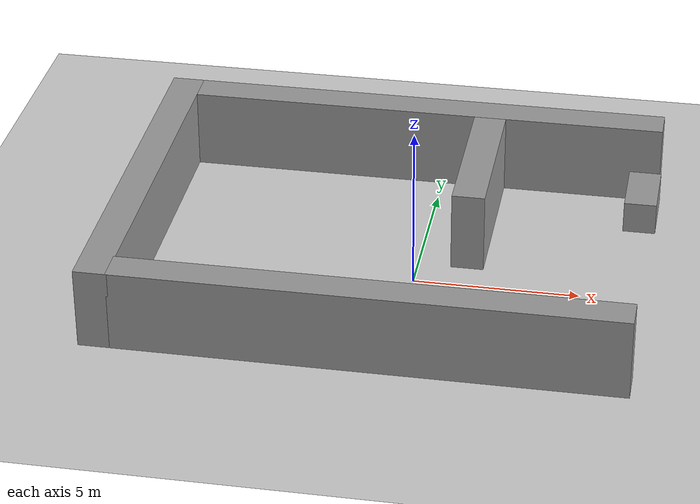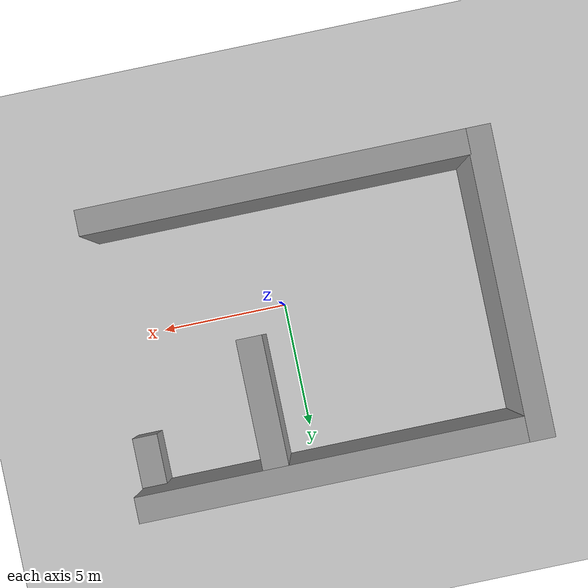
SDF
<sdf version="1.6">
 <world name="default">
  <light name="sun" type="directional">
   <pose>0 0 10 0 -0 0</pose>
   <diffuse>0.8 0.8 0.8 1</diffuse>
   <specular>0.2 0.2 0.2 1</specular>
   <attenuation>
    <range>1000</range>
    <constant>0.9</constant>
    <linear>0.01</linear>
    <quadratic>0.001</quadratic>
   </attenuation>
   <direction>-0.5 0.1 -0.9</direction>
  </light>
  <model name="ground_plane">
   <static>1</static>
   <link name="link">
    <collision name="collision">
     <geometry><plane><normal>0 0 1</normal><size>100 100</size></plane></geometry>
     <surface>
      <contact><collide_bitmask>65535</collide_bitmask></contact>
      <friction><ode><mu>100</mu><mu2>50</mu2></ode></friction>
     </surface>
    </collision>
    <visual name="visual">
     <cast_shadows>0</cast_shadows>
     <geometry><plane><normal>0 0 1</normal><size>100 100</size></plane></geometry>
     <material>
      <script><uri>file://media/materials/scripts/gazebo.material</uri><name>Gazebo/Grey</name></script>
     </material>
    </visual>
   </link>
  </model>
  <gravity>0 0 -9.8</gravity>
  <magnetic_field>6e-06 2.3e-05 -4.2e-05</magnetic_field>
  <atmosphere type="adiabatic"/>
  <physics name="default_physics" default="0" type="ode">
   <max_step_size>0.001</max_step_size>
   <real_time_factor>1</real_time_factor>
   <real_time_update_rate>1000</real_time_update_rate>
  </physics>
  <scene><ambient>0.4 0.4 0.4 1</ambient><background>0.7 0.7 0.7 1</background><shadows>1</shadows></scene>
  <spherical_coordinates>
   <surface_model>EARTH_WGS84</surface_model>
   <latitude_deg>0</latitude_deg>
   <longitude_deg>0</longitude_deg>
   <elevation>0</elevation>
   <heading_deg>0</heading_deg>
  </spherical_coordinates>
  <model name="deadspace">
   <link name="link">
    <inertial>
     <mass>11.6598</mass>
     <inertia><ixx>1.9433</ixx><ixy>0</ixy><ixz>0</ixz><iyy>133.069</iyy><iyz>0</iyz><izz>133.069</izz></inertia>
    </inertial>
    <pose>1.5 1 0.6 0 -0 0</pose>
    <visual name="visual">
     <geometry><box><size>15 1 2.5</size></box></geometry>
     <material>
      <script><name>Gazebo/Grey</name><uri>file://media/materials/scripts/gazebo.material</uri></script>
      <shader type="pixel"><normal_map>__default__</normal_map></shader>
      <ambient>0.3 0.3 0.3 1</ambient>
      <diffuse>0.7 0.7 0.7 1</diffuse>
      <specular>0.01 0.01 0.01 1</specular>
      <emissive>0 0 0 1</emissive>
     </material>
    </visual>
    <collision name="collision">
     <geometry><box><size>15 1 2.5</size></box></geometry>
     <surface>
      <friction>
       <ode><mu>1</mu><mu2>1</mu2><fdir1>0 0 0</fdir1><slip1>0</slip1><slip2>0</slip2></ode>
       <torsional>
        <coefficient>1</coefficient>
        <patch_radius>0</patch_radius>
        <surface_radius>0</surface_radius>
        <use_patch_radius>1</use_patch_radius>
        <ode><slip>0</slip></ode>
       </torsional>
      </friction>
      <bounce><restitution_coefficient>0</restitution_coefficient><threshold>1e+06</threshold></bounce>
      <contact>
       <collide_without_contact>0</collide_without_contact>
       <collide_without_contact_bitmask>1</collide_without_contact_bitmask>
       <collide_bitmask>1</collide_bitmask>
       <ode>
        <soft_cfm>0</soft_cfm>
        <soft_erp>0.2</soft_erp>
        <kp>1e+13</kp>
        <kd>1</kd>
        <max_vel>0.01</max_vel>
        <min_depth>0</min_depth>
       </ode>
       <bullet>
        <split_impulse>1</split_impulse>
        <split_impulse_penetration_threshold>-0.01</split_impulse_penetration_threshold>
        <soft_cfm>0</soft_cfm>
        <soft_erp>0.2</soft_erp>
        <kp>1e+13</kp>
        <kd>1</kd>
       </bullet>
      </contact>
     </surface>
    </collision>
   </link>
   <link name="link_0">
    <inertial>
     <mass>1</mass>
     <inertia>
      <ixx>0.166667</ixx>
      <ixy>0</ixy>
      <ixz>0</ixz>
      <iyy>0.166667</iyy>
      <iyz>0</iyz>
      <izz>0.166667</izz>
     </inertia>
    </inertial>
    <pose>8.54573 10.4934 -0.15846 -3e-06 -0 -1e-05</pose>
    <visual name="visual">
     <geometry><box><size>1 2 1</size></box></geometry>
     <material>
      <lighting>1</lighting>
      <script><uri>file://media/materials/scripts/gazebo.material</uri><name>Gazebo/Grey</name></script>
      <shader type="pixel"><normal_map>__default__</normal_map></shader>
      <ambient>0.3 0.3 0.3 1</ambient>
      <diffuse>0.7 0.7 0.7 1</diffuse>
      <specular>0.01 0.01 0.01 1</specular>
      <emissive>0 0 0 1</emissive>
     </material>
    </visual>
    <collision name="collision">
     <geometry><box><size>1 2 1</size></box></geometry>
     <surface>
      <friction>
       <ode><mu>1</mu><mu2>1</mu2><fdir1>0 0 0</fdir1><slip1>0</slip1><slip2>0</slip2></ode>
       <torsional>
        <coefficient>1</coefficient>
        <patch_radius>0</patch_radius>
        <surface_radius>0</surface_radius>
        <use_patch_radius>1</use_patch_radius>
        <ode><slip>0</slip></ode>
       </torsional>
      </friction>
      <bounce><restitution_coefficient>0</restitution_coefficient><threshold>1e+06</threshold></bounce>
      <contact>
       <collide_without_contact>0</collide_without_contact>
       <collide_without_contact_bitmask>1</collide_without_contact_bitmask>
       <collide_bitmask>1</collide_bitmask>
       <ode>
        <soft_cfm>0</soft_cfm>
        <soft_erp>0.2</soft_erp>
        <kp>1e+13</kp>
        <kd>1</kd>
        <max_vel>0.01</max_vel>
        <min_depth>0</min_depth>
       </ode>
       <bullet>
        <split_impulse>1</split_impulse>
        <split_impulse_penetration_threshold>-0.01</split_impulse_penetration_threshold>
        <soft_cfm>0</soft_cfm>
        <soft_erp>0.2</soft_erp>
        <kp>1e+13</kp>
        <kd>1</kd>
       </bullet>
      </contact>
     </surface>
    </collision>
   </link>
   <link name="link_1">
    <inertial>
     <mass>4.8902</mass>
     <inertia><ixx>10.1529</ixx><ixy>0</ixy><ixz>0</ixz><iyy>0.815033</iyy><iyz>0</iyz><izz>10.1529</izz></inertia>
    </inertial>
    <pose>3.56457 9 0.6 1e-05 -0 0</pose>
    <visual name="visual">
     <geometry><box><size>1 5 2.5</size></box></geometry>
     <material>
      <lighting>1</lighting>
      <script><uri>file://media/materials/scripts/gazebo.material</uri><name>Gazebo/Grey</name></script>
      <shader type="pixel"><normal_map>__default__</normal_map></shader>
      <ambient>0.3 0.3 0.3 1</ambient>
      <diffuse>0.7 0.7 0.7 1</diffuse>
      <specular>0.01 0.01 0.01 1</specular>
      <emissive>0 0 0 1</emissive>
     </material>
    </visual>
    <collision name="collision">
     <geometry><box><size>1 5 2.5</size></box></geometry>
     <surface>
      <friction>
       <ode><mu>1</mu><mu2>1</mu2><fdir1>0 0 0</fdir1><slip1>0</slip1><slip2>0</slip2></ode>
       <torsional>
        <coefficient>1</coefficient>
        <patch_radius>0</patch_radius>
        <surface_radius>0</surface_radius>
        <use_patch_radius>1</use_patch_radius>
        <ode><slip>0</slip></ode>
       </torsional>
      </friction>
      <bounce><restitution_coefficient>0</restitution_coefficient><threshold>1e+06</threshold></bounce>
      <contact>
       <collide_without_contact>0</collide_without_contact>
       <collide_without_contact_bitmask>1</collide_without_contact_bitmask>
       <collide_bitmask>1</collide_bitmask>
       <ode>
        <soft_cfm>0</soft_cfm>
        <soft_erp>0.2</soft_erp>
        <kp>1e+13</kp>
        <kd>1</kd>
        <max_vel>0.01</max_vel>
        <min_depth>0</min_depth>
       </ode>
       <bullet>
        <split_impulse>1</split_impulse>
        <split_impulse_penetration_threshold>-0.01</split_impulse_penetration_threshold>
        <soft_cfm>0</soft_cfm>
        <soft_erp>0.2</soft_erp>
        <kp>1e+13</kp>
        <kd>1</kd>
       </bullet>
      </contact>
     </surface>
    </collision>
   </link>
   <link name="link_1_clone">
    <inertial>
     <mass>4.8902</mass>
     <inertia><ixx>10.1529</ixx><ixy>0</ixy><ixz>0</ixz><iyy>0.815033</iyy><iyz>0</iyz><izz>10.1529</izz></inertia>
    </inertial>
    <pose>-6.44417 6.5 0.599962 1e-05 -0 0</pose>
    <visual name="visual">
     <geometry><box><size>1 12 2.5</size></box></geometry>
     <material>
      <lighting>1</lighting>
      <script><uri>file://media/materials/scripts/gazebo.material</uri><name>Gazebo/Grey</name></script>
      <shader type="pixel"><normal_map>__default__</normal_map></shader>
      <ambient>0.3 0.3 0.3 1</ambient>
      <diffuse>0.7 0.7 0.7 1</diffuse>
      <specular>0.01 0.01 0.01 1</specular>
      <emissive>0 0 0 1</emissive>
     </material>
    </visual>
    <collision name="collision">
     <geometry><box><size>1 12 2.5</size></box></geometry>
     <surface>
      <friction>
       <ode><mu>1</mu><mu2>1</mu2><fdir1>0 0 0</fdir1><slip1>0</slip1><slip2>0</slip2></ode>
       <torsional>
        <coefficient>1</coefficient>
        <patch_radius>0</patch_radius>
        <surface_radius>0</surface_radius>
        <use_patch_radius>1</use_patch_radius>
        <ode><slip>0</slip></ode>
       </torsional>
      </friction>
      <bounce><restitution_coefficient>0</restitution_coefficient><threshold>1e+06</threshold></bounce>
      <contact>
       <collide_without_contact>0</collide_without_contact>
       <collide_without_contact_bitmask>1</collide_without_contact_bitmask>
       <collide_bitmask>1</collide_bitmask>
       <ode>
        <soft_cfm>0</soft_cfm>
        <soft_erp>0.2</soft_erp>
        <kp>1e+13</kp>
        <kd>1</kd>
        <max_vel>0.01</max_vel>
        <min_depth>0</min_depth>
       </ode>
       <bullet>
        <split_impulse>1</split_impulse>
        <split_impulse_penetration_threshold>-0.01</split_impulse_penetration_threshold>
        <soft_cfm>0</soft_cfm>
        <soft_erp>0.2</soft_erp>
        <kp>1e+13</kp>
        <kd>1</kd>
       </bullet>
      </contact>
     </surface>
    </collision>
   </link>
   <link name="link_clone">
    <inertial>
     <mass>11.6598</mass>
     <inertia><ixx>1.9433</ixx><ixy>0</ixy><ixz>0</ixz><iyy>133.069</iyy><iyz>0</iyz><izz>133.069</izz></inertia>
    </inertial>
    <pose>1.5 12 0.6 1e-05 -0 0</pose>
    <visual name="visual">
     <geometry><box><size>15 1 2.5</size></box></geometry>
     <material>
      <script><name>Gazebo/Grey</name><uri>file://media/materials/scripts/gazebo.material</uri></script>
      <shader type="pixel"><normal_map>__default__</normal_map></shader>
      <ambient>0.3 0.3 0.3 1</ambient>
      <diffuse>0.7 0.7 0.7 1</diffuse>
      <specular>0.01 0.01 0.01 1</specular>
      <emissive>0 0 0 1</emissive>
     </material>
    </visual>
    <collision name="collision">
     <geometry><box><size>15 1 2.5</size></box></geometry>
     <surface>
      <friction>
       <ode><mu>1</mu><mu2>1</mu2><fdir1>0 0 0</fdir1><slip1>0</slip1><slip2>0</slip2></ode>
       <torsional>
        <coefficient>1</coefficient>
        <patch_radius>0</patch_radius>
        <surface_radius>0</surface_radius>
        <use_patch_radius>1</use_patch_radius>
        <ode><slip>0</slip></ode>
       </torsional>
      </friction>
      <bounce><restitution_coefficient>0</restitution_coefficient><threshold>1e+06</threshold></bounce>
      <contact>
       <collide_without_contact>0</collide_without_contact>
       <collide_without_contact_bitmask>1</collide_without_contact_bitmask>
       <collide_bitmask>1</collide_bitmask>
       <ode>
        <soft_cfm>0</soft_cfm>
        <soft_erp>0.2</soft_erp>
        <kp>1e+13</kp>
        <kd>1</kd>
        <max_vel>0.01</max_vel>
        <min_depth>0</min_depth>
       </ode>
       <bullet>
        <split_impulse>1</split_impulse>
        <split_impulse_penetration_threshold>-0.01</split_impulse_penetration_threshold>
        <soft_cfm>0</soft_cfm>
        <soft_erp>0.2</soft_erp>
        <kp>1e+13</kp>
        <kd>1</kd>
       </bullet>
      </contact>
     </surface>
    </collision>
   </link>
   <static>0</static>
   <pose>-2.08015 -5.51237 0.649998 1e-06 0 1.1e-05</pose>
  </model>
 </world>
</sdf>
